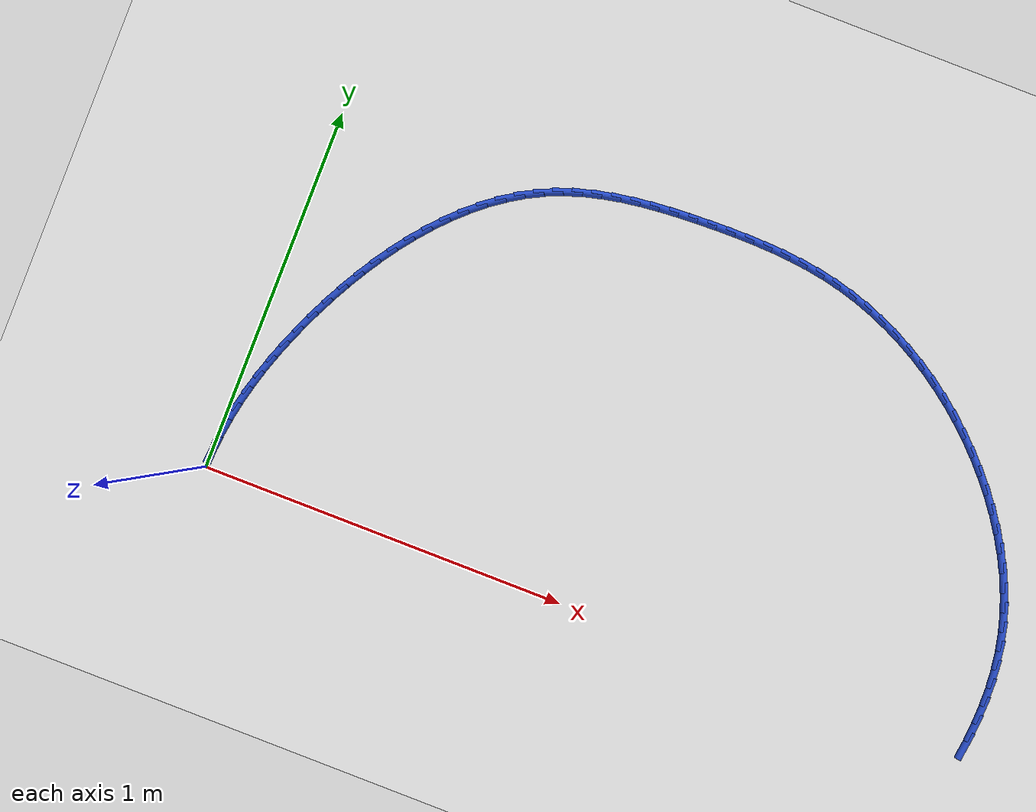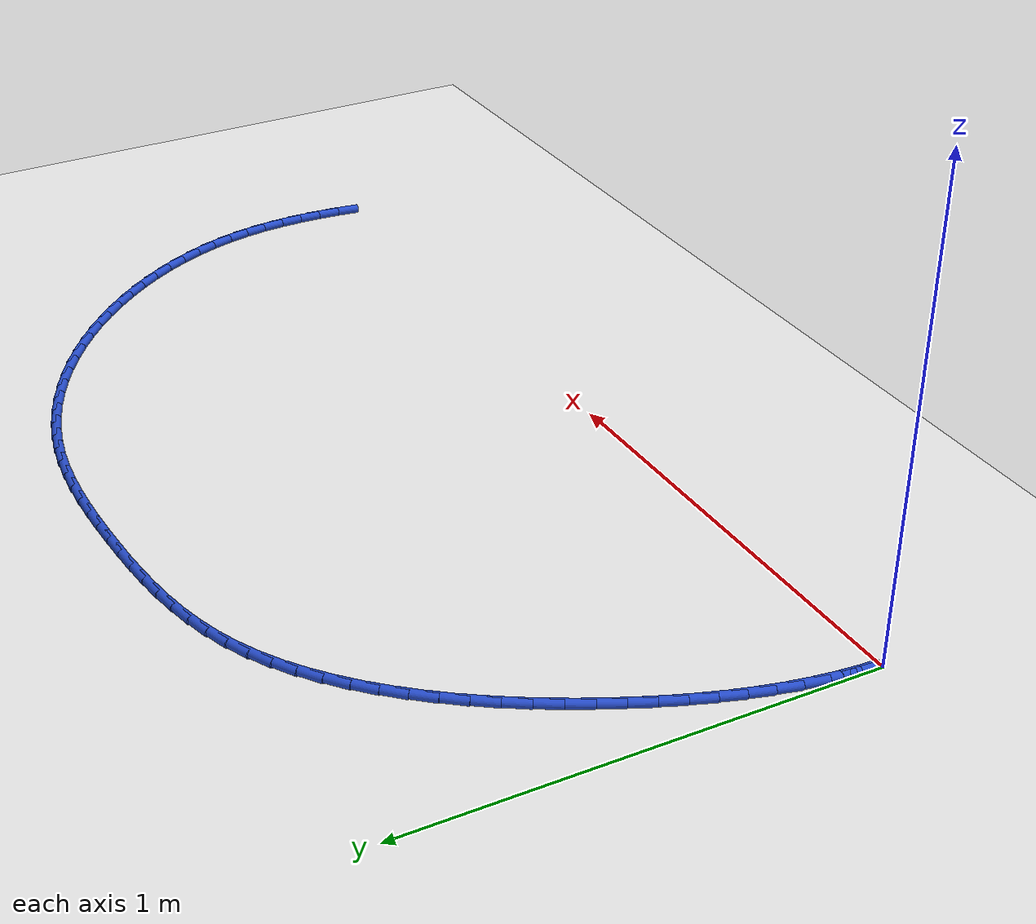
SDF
<sdf version="1.6">
 <world name="default">
  <model name="ground_plane">
   <static>1</static>
   <link name="link">
    <collision name="collision">
     <geometry><plane><normal>0 0 1</normal><size>100 100</size></plane></geometry>
     <surface><friction><ode><mu>100</mu><mu2>50</mu2></ode></friction></surface>
    </collision>
    <visual name="visual">
     <cast_shadows>0</cast_shadows>
     <geometry><plane><normal>0 0 1</normal><size>100 100</size></plane></geometry>
     <material>
      <script><uri>file://media/materials/scripts/gazebo.material</uri><name>Gazebo/WhiteGlow</name></script>
     </material>
    </visual>
   </link>
  </model>
  <model name="line">
   <link name="link_1">
    <pose>0.002122987057081736 0.05161057832736877 0.01 0 1.57 1.4746298192108533</pose>
    <collision name="collision">
     <geometry><cylinder><radius>0.01</radius><length>0.08</length></cylinder></geometry>
    </collision>
    <visual name="visual">
     <material>
      <script><name>Gazebo/Blue</name><uri>file://media/materials/scripts/gazebo.material</uri></script>
     </material>
     <geometry><cylinder><radius>0.01</radius><length>0.08</length></cylinder></geometry>
    </visual>
   </link>
   <link name="link_2">
    <pose>0.007065242117981601 0.10284473939891577 0.01 0 1.57 1.4220485175223843</pose>
    <collision name="collision">
     <geometry><cylinder><radius>0.01</radius><length>0.08</length></cylinder></geometry>
    </collision>
    <visual name="visual">
     <material>
      <script><name>Gazebo/Blue</name><uri>file://media/materials/scripts/gazebo.material</uri></script>
     </material>
     <geometry><cylinder><radius>0.01</radius><length>0.08</length></cylinder></geometry>
    </visual>
   </link>
   <link name="link_3">
    <pose>0.014689182851280323 0.15372030372954376 0.01 0 1.57 1.3722387298763576</pose>
    <collision name="collision">
     <geometry><cylinder><radius>0.01</radius><length>0.08</length></cylinder></geometry>
    </collision>
    <visual name="visual">
     <material>
      <script><name>Gazebo/Blue</name><uri>file://media/materials/scripts/gazebo.material</uri></script>
     </material>
     <geometry><cylinder><radius>0.01</radius><length>0.08</length></cylinder></geometry>
    </visual>
   </link>
   <link name="link_4">
    <pose>0.02485722692555863 0.20425509183415538 0.01 0 1.57 1.3254127008254404</pose>
    <collision name="collision">
     <geometry><cylinder><radius>0.01</radius><length>0.08</length></cylinder></geometry>
    </collision>
    <visual name="visual">
     <material>
      <script><name>Gazebo/Blue</name><uri>file://media/materials/scripts/gazebo.material</uri></script>
     </material>
     <geometry><cylinder><radius>0.01</radius><length>0.08</length></cylinder></geometry>
    </visual>
   </link>
   <link name="link_5">
    <pose>0.037431792009397225 0.25446692422765316 0.01 0 1.57 1.2817035086374633</pose>
    <collision name="collision">
     <geometry><cylinder><radius>0.01</radius><length>0.08</length></cylinder></geometry>
    </collision>
    <visual name="visual">
     <material>
      <script><name>Gazebo/Blue</name><uri>file://media/materials/scripts/gazebo.material</uri></script>
     </material>
     <geometry><cylinder><radius>0.01</radius><length>0.08</length></cylinder></geometry>
    </visual>
   </link>
   <link name="link_6">
    <pose>0.05227529577137683 0.3043736214249398 0.01 0 1.57 1.2411753798923555</pose>
    <collision name="collision">
     <geometry><cylinder><radius>0.01</radius><length>0.08</length></cylinder></geometry>
    </collision>
    <visual name="visual">
     <material>
      <script><name>Gazebo/Blue</name><uri>file://media/materials/scripts/gazebo.material</uri></script>
     </material>
     <geometry><cylinder><radius>0.01</radius><length>0.08</length></cylinder></geometry>
    </visual>
   </link>
   <link name="link_7">
    <pose>0.0692501558800782 0.3539930039409178 0.01 0 1.57 1.203835963782136</pose>
    <collision name="collision">
     <geometry><cylinder><radius>0.01</radius><length>0.08</length></cylinder></geometry>
    </collision>
    <visual name="visual">
     <material>
      <script><name>Gazebo/Blue</name><uri>file://media/materials/scripts/gazebo.material</uri></script>
     </material>
     <geometry><cylinder><radius>0.01</radius><length>0.08</length></cylinder></geometry>
    </visual>
   </link>
   <link name="link_8">
    <pose>0.08821879000408203 0.40334289229049 0.01 0 1.57 1.169648998151661</pose>
    <collision name="collision">
     <geometry><cylinder><radius>0.01</radius><length>0.08</length></cylinder></geometry>
    </collision>
    <visual name="visual">
     <material>
      <script><name>Gazebo/Blue</name><uri>file://media/materials/scripts/gazebo.material</uri></script>
     </material>
     <geometry><cylinder><radius>0.01</radius><length>0.08</length></cylinder></geometry>
    </visual>
   </link>
   <link name="link_9">
    <pose>0.10904361581196909 0.45244110698855877 0.01 0 1.57 1.138219138631614</pose>
    <collision name="collision">
     <geometry><cylinder><radius>0.01</radius><length>0.08</length></cylinder></geometry>
    </collision>
    <visual name="visual">
     <material>
      <script><name>Gazebo/Blue</name><uri>file://media/materials/scripts/gazebo.material</uri></script>
     </material>
     <geometry><cylinder><radius>0.01</radius><length>0.08</length></cylinder></geometry>
    </visual>
   </link>
   <link name="link_10">
    <pose>0.13159733834185822 0.5012857559714778 0.01 0 1.57 1.106544334453645</pose>
    <collision name="collision">
     <geometry><cylinder><radius>0.01</radius><length>0.08</length></cylinder></geometry>
    </collision>
    <visual name="visual">
     <material>
      <script><name>Gazebo/Blue</name><uri>file://media/materials/scripts/gazebo.material</uri></script>
     </material>
     <geometry><cylinder><radius>0.01</radius><length>0.08</length></cylinder></geometry>
    </visual>
   </link>
   <link name="link_11">
    <pose>0.15584247460496659 0.549702850162097 0.01 0 1.57 1.072860866396723</pose>
    <collision name="collision">
     <geometry><cylinder><radius>0.01</radius><length>0.08</length></cylinder></geometry>
    </collision>
    <visual name="visual">
     <material>
      <script><name>Gazebo/Blue</name><uri>file://media/materials/scripts/gazebo.material</uri></script>
     </material>
     <geometry><cylinder><radius>0.01</radius><length>0.08</length></cylinder></geometry>
    </visual>
   </link>
   <link name="link_12">
    <pose>0.18178790152196384 0.597429565980606 0.01 0 1.57 1.036826319427935</pose>
    <collision name="collision">
     <geometry><cylinder><radius>0.01</radius><length>0.08</length></cylinder></geometry>
    </collision>
    <visual name="visual">
     <material>
      <script><name>Gazebo/Blue</name><uri>file://media/materials/scripts/gazebo.material</uri></script>
     </material>
     <geometry><cylinder><radius>0.01</radius><length>0.08</length></cylinder></geometry>
    </visual>
   </link>
   <link name="link_13">
    <pose>0.20944288263749525 0.6442023390012989 0.01 0 1.57 0.9980889997799091</pose>
    <collision name="collision">
     <geometry><cylinder><radius>0.01</radius><length>0.08</length></cylinder></geometry>
    </collision>
    <visual name="visual">
     <material>
      <script><name>Gazebo/Blue</name><uri>file://media/materials/scripts/gazebo.material</uri></script>
     </material>
     <geometry><cylinder><radius>0.01</radius><length>0.08</length></cylinder></geometry>
    </visual>
   </link>
   <link name="link_14">
    <pose>0.2388166814962065 0.6897576047984708 0.01 0 1.57 0.9562744613404274</pose>
    <collision name="collision">
     <geometry><cylinder><radius>0.01</radius><length>0.08</length></cylinder></geometry>
    </collision>
    <visual name="visual">
     <material>
      <script><name>Gazebo/Blue</name><uri>file://media/materials/scripts/gazebo.material</uri></script>
     </material>
     <geometry><cylinder><radius>0.01</radius><length>0.08</length></cylinder></geometry>
    </visual>
   </link>
   <link name="link_15">
    <pose>0.26991856164274314 0.7338317989464165 0.01 0 1.57 0.9109873282340262</pose>
    <collision name="collision">
     <geometry><cylinder><radius>0.01</radius><length>0.08</length></cylinder></geometry>
    </collision>
    <visual name="visual">
     <material>
      <script><name>Gazebo/Blue</name><uri>file://media/materials/scripts/gazebo.material</uri></script>
     </material>
     <geometry><cylinder><radius>0.01</radius><length>0.08</length></cylinder></geometry>
    </visual>
   </link>
   <link name="link_16">
    <pose>0.30275778662175046 0.7761613570194296 0.01 0 1.57 0.861817460613663</pose>
    <collision name="collision">
     <geometry><cylinder><radius>0.01</radius><length>0.08</length></cylinder></geometry>
    </collision>
    <visual name="visual">
     <material>
      <script><name>Gazebo/Blue</name><uri>file://media/materials/scripts/gazebo.material</uri></script>
     </material>
     <geometry><cylinder><radius>0.01</radius><length>0.08</length></cylinder></geometry>
    </visual>
   </link>
   <link name="link_17">
    <pose>0.3373436199778742 0.8164827145918054 0.01 0 1.57 0.8083522917412677</pose>
    <collision name="collision">
     <geometry><cylinder><radius>0.01</radius><length>0.08</length></cylinder></geometry>
    </collision>
    <visual name="visual">
     <material>
      <script><name>Gazebo/Blue</name><uri>file://media/materials/scripts/gazebo.material</uri></script>
     </material>
     <geometry><cylinder><radius>0.01</radius><length>0.08</length></cylinder></geometry>
    </visual>
   </link>
   <link name="link_18">
    <pose>0.3736853252557597 0.8545323072378384 0.01 0 1.57 0.750197569891913</pose>
    <collision name="collision">
     <geometry><cylinder><radius>0.01</radius><length>0.08</length></cylinder></geometry>
    </collision>
    <visual name="visual">
     <material>
      <script><name>Gazebo/Blue</name><uri>file://media/materials/scripts/gazebo.material</uri></script>
     </material>
     <geometry><cylinder><radius>0.01</radius><length>0.08</length></cylinder></geometry>
    </visual>
   </link>
   <link name="link_19">
    <pose>0.41179216600005264 0.890046570531823 0.01 0 1.57 0.6870088254310174</pose>
    <collision name="collision">
     <geometry><cylinder><radius>0.01</radius><length>0.08</length></cylinder></geometry>
    </collision>
    <visual name="visual">
     <material>
      <script><name>Gazebo/Blue</name><uri>file://media/materials/scripts/gazebo.material</uri></script>
     </material>
     <geometry><cylinder><radius>0.01</radius><length>0.08</length></cylinder></geometry>
    </visual>
   </link>
   <link name="link_20">
    <pose>0.45167340575539827 0.9227619400480537 0.01 0 1.57 0.6185352343927327</pose>
    <collision name="collision">
     <geometry><cylinder><radius>0.01</radius><length>0.08</length></cylinder></geometry>
    </collision>
    <visual name="visual">
     <material>
      <script><name>Gazebo/Blue</name><uri>file://media/materials/scripts/gazebo.material</uri></script>
     </material>
     <geometry><cylinder><radius>0.01</radius><length>0.08</length></cylinder></geometry>
    </visual>
   </link>
   <link name="link_21">
    <pose>0.4933383080664422 0.9524148513608252 0.01 0 1.57 0.5446755889288483</pose>
    <collision name="collision">
     <geometry><cylinder><radius>0.01</radius><length>0.08</length></cylinder></geometry>
    </collision>
    <visual name="visual">
     <material>
      <script><name>Gazebo/Blue</name><uri>file://media/materials/scripts/gazebo.material</uri></script>
     </material>
     <geometry><cylinder><radius>0.01</radius><length>0.08</length></cylinder></geometry>
    </visual>
   </link>
   <link name="link_22">
    <pose>0.5367961364778302 0.978741740044432 0.01 0 1.57 0.46554227603611614</pose>
    <collision name="collision">
     <geometry><cylinder><radius>0.01</radius><length>0.08</length></cylinder></geometry>
    </collision>
    <visual name="visual">
     <material>
      <script><name>Gazebo/Blue</name><uri>file://media/materials/scripts/gazebo.material</uri></script>
     </material>
     <geometry><cylinder><radius>0.01</radius><length>0.08</length></cylinder></geometry>
    </visual>
   </link>
   <link name="link_23">
    <pose>0.5820561545342072 1.0014790416731685 0.01 0 1.57 0.3833126982745174</pose>
    <collision name="collision">
     <geometry><cylinder><radius>0.01</radius><length>0.08</length></cylinder></geometry>
    </collision>
    <visual name="visual">
     <material>
      <script><name>Gazebo/Blue</name><uri>file://media/materials/scripts/gazebo.material</uri></script>
     </material>
     <geometry><cylinder><radius>0.01</radius><length>0.08</length></cylinder></geometry>
    </visual>
   </link>
   <link name="link_24">
    <pose>0.6290940569422839 1.0204474991332095 0.01 0 1.57 0.30762005276217924</pose>
    <collision name="collision">
     <geometry><cylinder><radius>0.01</radius><length>0.08</length></cylinder></geometry>
    </collision>
    <visual name="visual">
     <material>
      <script><name>Gazebo/Blue</name><uri>file://media/materials/scripts/gazebo.material</uri></script>
     </material>
     <geometry><cylinder><radius>0.01</radius><length>0.08</length></cylinder></geometry>
    </visual>
   </link>
   <link name="link_25">
    <pose>0.6777155392564213 1.0358948040059397 0.01 0 1.57 0.24157349544436732</pose>
    <collision name="collision">
     <geometry><cylinder><radius>0.01</radius><length>0.08</length></cylinder></geometry>
    </collision>
    <visual name="visual">
     <material>
      <script><name>Gazebo/Blue</name><uri>file://media/materials/scripts/gazebo.material</uri></script>
     </material>
     <geometry><cylinder><radius>0.01</radius><length>0.08</length></cylinder></geometry>
    </visual>
   </link>
   <link name="link_26">
    <pose>0.7276726103691641 1.0482034806051221 0.01 0 1.57 0.1850025951954278</pose>
    <collision name="collision">
     <geometry><cylinder><radius>0.01</radius><length>0.08</length></cylinder></geometry>
    </collision>
    <visual name="visual">
     <material>
      <script><name>Gazebo/Blue</name><uri>file://media/materials/scripts/gazebo.material</uri></script>
     </material>
     <geometry><cylinder><radius>0.01</radius><length>0.08</length></cylinder></geometry>
    </visual>
   </link>
   <link name="link_27">
    <pose>0.7787172585446928 1.0577561050521502 0.01 0 1.57 0.13749559110920143</pose>
    <collision name="collision">
     <geometry><cylinder><radius>0.01</radius><length>0.08</length></cylinder></geometry>
    </collision>
    <visual name="visual">
     <material>
      <script><name>Gazebo/Blue</name><uri>file://media/materials/scripts/gazebo.material</uri></script>
     </material>
     <geometry><cylinder><radius>0.01</radius><length>0.08</length></cylinder></geometry>
    </visual>
   </link>
   <link name="link_28">
    <pose>0.830601472047187 1.0649352534684173 0.01 0 1.57 0.09854913867847018</pose>
    <collision name="collision">
     <geometry><cylinder><radius>0.01</radius><length>0.08</length></cylinder></geometry>
    </collision>
    <visual name="visual">
     <material>
      <script><name>Gazebo/Blue</name><uri>file://media/materials/scripts/gazebo.material</uri></script>
     </material>
     <geometry><cylinder><radius>0.01</radius><length>0.08</length></cylinder></geometry>
    </visual>
   </link>
   <link name="link_29">
    <pose>0.8830772391408273 1.0701235019753161 0.01 0 1.57 0.06767332160843843</pose>
    <collision name="collision">
     <geometry><cylinder><radius>0.01</radius><length>0.08</length></cylinder></geometry>
    </collision>
    <visual name="visual">
     <material>
      <script><name>Gazebo/Blue</name><uri>file://media/materials/scripts/gazebo.material</uri></script>
     </material>
     <geometry><cylinder><radius>0.01</radius><length>0.08</length></cylinder></geometry>
    </visual>
   </link>
   <link name="link_30">
    <pose>0.9358965480897938 1.0737034266942411 0.01 0 1.57 0.0444606028585605</pose>
    <collision name="collision">
     <geometry><cylinder><radius>0.01</radius><length>0.08</length></cylinder></geometry>
    </collision>
    <visual name="visual">
     <material>
      <script><name>Gazebo/Blue</name><uri>file://media/materials/scripts/gazebo.material</uri></script>
     </material>
     <geometry><cylinder><radius>0.01</radius><length>0.08</length></cylinder></geometry>
    </visual>
   </link>
   <link name="link_31">
    <pose>0.9888113871582666 1.0760576037465843 0.01 0 1.57 0.027847968895785464</pose>
    <collision name="collision">
     <geometry><cylinder><radius>0.01</radius><length>0.08</length></cylinder></geometry>
    </collision>
    <visual name="visual">
     <material>
      <script><name>Gazebo/Blue</name><uri>file://media/materials/scripts/gazebo.material</uri></script>
     </material>
     <geometry><cylinder><radius>0.01</radius><length>0.08</length></cylinder></geometry>
    </visual>
   </link>
   <link name="link_32">
    <pose>1.0415857307388718 1.0775276420542554 0.01 0 1.57 0.009845941630071325</pose>
    <collision name="collision">
     <geometry><cylinder><radius>0.01</radius><length>0.08</length></cylinder></geometry>
    </collision>
    <visual name="visual">
     <material>
      <script><name>Gazebo/Blue</name><uri>file://media/materials/scripts/gazebo.material</uri></script>
     </material>
     <geometry><cylinder><radius>0.01</radius><length>0.08</length></cylinder></geometry>
    </visual>
   </link>
   <link name="link_33">
    <pose>1.0941036285661363 1.078044746920729 0.01 0 1.57 -0.014193462097972355</pose>
    <collision name="collision">
     <geometry><cylinder><radius>0.01</radius><length>0.08</length></cylinder></geometry>
    </collision>
    <visual name="visual">
     <material>
      <script><name>Gazebo/Blue</name><uri>file://media/materials/scripts/gazebo.material</uri></script>
     </material>
     <geometry><cylinder><radius>0.01</radius><length>0.08</length></cylinder></geometry>
    </visual>
   </link>
   <link name="link_34">
    <pose>1.1463183351638118 1.077303589691223 0.01 0 1.57 -0.044462508395478224</pose>
    <collision name="collision">
     <geometry><cylinder><radius>0.01</radius><length>0.08</length></cylinder></geometry>
    </collision>
    <visual name="visual">
     <material>
      <script><name>Gazebo/Blue</name><uri>file://media/materials/scripts/gazebo.material</uri></script>
     </material>
     <geometry><cylinder><radius>0.01</radius><length>0.08</length></cylinder></geometry>
    </visual>
   </link>
   <link name="link_35">
    <pose>1.1981839382235815 1.0749959940394065 0.01 0 1.57 -0.08107625895810534</pose>
    <collision name="collision">
     <geometry><cylinder><radius>0.01</radius><length>0.08</length></cylinder></geometry>
    </collision>
    <visual name="visual">
     <material>
      <script><name>Gazebo/Blue</name><uri>file://media/materials/scripts/gazebo.material</uri></script>
     </material>
     <geometry><cylinder><radius>0.01</radius><length>0.08</length></cylinder></geometry>
    </visual>
   </link>
   <link name="link_36">
    <pose>1.2496545254371303 1.0708137836389482 0.01 0 1.57 -0.12409053084290556</pose>
    <collision name="collision">
     <geometry><cylinder><radius>0.01</radius><length>0.08</length></cylinder></geometry>
    </collision>
    <visual name="visual">
     <material>
      <script><name>Gazebo/Blue</name><uri>file://media/materials/scripts/gazebo.material</uri></script>
     </material>
     <geometry><cylinder><radius>0.01</radius><length>0.08</length></cylinder></geometry>
    </visual>
   </link>
   <link name="link_37">
    <pose>1.300684184496141 1.0644487821635158 0.01 0 1.57 -0.17345636085955263</pose>
    <collision name="collision">
     <geometry><cylinder><radius>0.01</radius><length>0.08</length></cylinder></geometry>
    </collision>
    <visual name="visual">
     <material>
      <script><name>Gazebo/Blue</name><uri>file://media/materials/scripts/gazebo.material</uri></script>
     </material>
     <geometry><cylinder><radius>0.01</radius><length>0.08</length></cylinder></geometry>
    </visual>
   </link>
   <link name="link_38">
    <pose>1.3512270030923001 1.0555928132867791 0.01 0 1.57 -0.22886037122118144</pose>
    <collision name="collision">
     <geometry><cylinder><radius>0.01</radius><length>0.08</length></cylinder></geometry>
    </collision>
    <visual name="visual">
     <material>
      <script><name>Gazebo/Blue</name><uri>file://media/materials/scripts/gazebo.material</uri></script>
     </material>
     <geometry><cylinder><radius>0.01</radius><length>0.08</length></cylinder></geometry>
    </visual>
   </link>
   <link name="link_39">
    <pose>1.4012361903525279 1.0439435944051894 0.01 0 1.57 -0.28664828968040473</pose>
    <collision name="collision">
     <geometry><cylinder><radius>0.01</radius><length>0.08</length></cylinder></geometry>
    </collision>
    <visual name="visual">
     <material>
      <script><name>Gazebo/Blue</name><uri>file://media/materials/scripts/gazebo.material</uri></script>
     </material>
     <geometry><cylinder><radius>0.01</radius><length>0.08</length></cylinder></geometry>
    </visual>
   </link>
   <link name="link_40">
    <pose>1.450637697599778 1.0293816978931396 0.01 0 1.57 -0.3428724586278647</pose>
    <collision name="collision">
     <geometry><cylinder><radius>0.01</radius><length>0.08</length></cylinder></geometry>
    </collision>
    <visual name="visual">
     <material>
      <script><name>Gazebo/Blue</name><uri>file://media/materials/scripts/gazebo.material</uri></script>
     </material>
     <geometry><cylinder><radius>0.01</radius><length>0.08</length></cylinder></geometry>
    </visual>
   </link>
   <link name="link_41">
    <pose>1.499325608771805 1.0120014738022336 0.01 0 1.57 -0.3974167779181386</pose>
    <collision name="collision">
     <geometry><cylinder><radius>0.01</radius><length>0.08</length></cylinder></geometry>
    </collision>
    <visual name="visual">
     <material>
      <script><name>Gazebo/Blue</name><uri>file://media/materials/scripts/gazebo.material</uri></script>
     </material>
     <geometry><cylinder><radius>0.01</radius><length>0.08</length></cylinder></geometry>
    </visual>
   </link>
   <link name="link_42">
    <pose>1.5471922002645513 0.9919093978130651 0.01 0 1.57 -0.4504150446149429</pose>
    <collision name="collision">
     <geometry><cylinder><radius>0.01</radius><length>0.08</length></cylinder></geometry>
    </collision>
    <visual name="visual">
     <material>
      <script><name>Gazebo/Blue</name><uri>file://media/materials/scripts/gazebo.material</uri></script>
     </material>
     <geometry><cylinder><radius>0.01</radius><length>0.08</length></cylinder></geometry>
    </visual>
   </link>
   <link name="link_43">
    <pose>1.5941297484739585 0.9692119456062271 0.01 0 1.57 -0.5020219596239812</pose>
    <collision name="collision">
     <geometry><cylinder><radius>0.01</radius><length>0.08</length></cylinder></geometry>
    </collision>
    <visual name="visual">
     <material>
      <script><name>Gazebo/Blue</name><uri>file://media/materials/scripts/gazebo.material</uri></script>
     </material>
     <geometry><cylinder><radius>0.01</radius><length>0.08</length></cylinder></geometry>
    </visual>
   </link>
   <link name="link_44">
    <pose>1.640030529795969 0.9440155928623137 0.01 0 1.57 -0.5524073195346795</pose>
    <collision name="collision">
     <geometry><cylinder><radius>0.01</radius><length>0.08</length></cylinder></geometry>
    </collision>
    <visual name="visual">
     <material>
      <script><name>Gazebo/Blue</name><uri>file://media/materials/scripts/gazebo.material</uri></script>
     </material>
     <geometry><cylinder><radius>0.01</radius><length>0.08</length></cylinder></geometry>
    </visual>
   </link>
   <link name="link_45">
    <pose>1.6847868206265249 0.9164268152619182 0.01 0 1.57 -0.601751362470489</pose>
    <collision name="collision">
     <geometry><cylinder><radius>0.01</radius><length>0.08</length></cylinder></geometry>
    </collision>
    <visual name="visual">
     <material>
      <script><name>Gazebo/Blue</name><uri>file://media/materials/scripts/gazebo.material</uri></script>
     </material>
     <geometry><cylinder><radius>0.01</radius><length>0.08</length></cylinder></geometry>
    </visual>
   </link>
   <link name="link_46">
    <pose>1.7282908973615698 0.8865520884856336 0.01 0 1.57 -0.6502411656091158</pose>
    <collision name="collision">
     <geometry><cylinder><radius>0.01</radius><length>0.08</length></cylinder></geometry>
    </collision>
    <visual name="visual">
     <material>
      <script><name>Gazebo/Blue</name><uri>file://media/materials/scripts/gazebo.material</uri></script>
     </material>
     <geometry><cylinder><radius>0.01</radius><length>0.08</length></cylinder></geometry>
    </visual>
   </link>
   <link name="link_47">
    <pose>1.770435036397045 0.8544978882140537 0.01 0 1.57 -0.6980679407269345</pose>
    <collision name="collision">
     <geometry><cylinder><radius>0.01</radius><length>0.08</length></cylinder></geometry>
    </collision>
    <visual name="visual">
     <material>
      <script><name>Gazebo/Blue</name><uri>file://media/materials/scripts/gazebo.material</uri></script>
     </material>
     <geometry><cylinder><radius>0.01</radius><length>0.08</length></cylinder></geometry>
    </visual>
   </link>
   <link name="link_48">
    <pose>1.8111115141288918 0.8203706901277718 0.01 0 1.57 -0.7454250517559063</pose>
    <collision name="collision">
     <geometry><cylinder><radius>0.01</radius><length>0.08</length></cylinder></geometry>
    </collision>
    <visual name="visual">
     <material>
      <script><name>Gazebo/Blue</name><uri>file://media/materials/scripts/gazebo.material</uri></script>
     </material>
     <geometry><cylinder><radius>0.01</radius><length>0.08</length></cylinder></geometry>
    </visual>
   </link>
   <link name="link_49">
    <pose>1.8502126069530542 0.7842769699073817 0.01 0 1.57 -0.7925068940371026</pose>
    <collision name="collision">
     <geometry><cylinder><radius>0.01</radius><length>0.08</length></cylinder></geometry>
    </collision>
    <visual name="visual">
     <material>
      <script><name>Gazebo/Blue</name><uri>file://media/materials/scripts/gazebo.material</uri></script>
     </material>
     <geometry><cylinder><radius>0.01</radius><length>0.08</length></cylinder></geometry>
    </visual>
   </link>
   <link name="link_50">
    <pose>1.8876305604178534 0.7463232102103489 0.01 0 1.57 -0.8397715264558067</pose>
    <collision name="collision">
     <geometry><cylinder><radius>0.01</radius><length>0.08</length></cylinder></geometry>
    </collision>
    <visual name="visual">
     <material>
      <script><name>Gazebo/Blue</name><uri>file://media/materials/scripts/gazebo.material</uri></script>
     </material>
     <geometry><cylinder><radius>0.01</radius><length>0.08</length></cylinder></geometry>
    </visual>
   </link>
   <link name="link_51">
    <pose>1.923233864565424 0.7066212665278 0.01 0 1.57 -0.8882495703039754</pose>
    <collision name="collision">
     <geometry><cylinder><radius>0.01</radius><length>0.08</length></cylinder></geometry>
    </collision>
    <visual name="visual">
     <material>
      <script><name>Gazebo/Blue</name><uri>file://media/materials/scripts/gazebo.material</uri></script>
     </material>
     <geometry><cylinder><radius>0.01</radius><length>0.08</length></cylinder></geometry>
    </visual>
   </link>
   <link name="link_52">
    <pose>1.9568248480881087 0.6652979582049028 0.01 0 1.57 -0.9384774467832709</pose>
    <collision name="collision">
     <geometry><cylinder><radius>0.01</radius><length>0.08</length></cylinder></geometry>
    </collision>
    <visual name="visual">
     <material>
      <script><name>Gazebo/Blue</name><uri>file://media/materials/scripts/gazebo.material</uri></script>
     </material>
     <geometry><cylinder><radius>0.01</radius><length>0.08</length></cylinder></geometry>
    </visual>
   </link>
   <link name="link_53">
    <pose>1.9881944126520652 0.6224826890617845 0.01 0 1.57 -0.9908734684484066</pose>
    <collision name="collision">
     <geometry><cylinder><radius>0.01</radius><length>0.08</length></cylinder></geometry>
    </collision>
    <visual name="visual">
     <material>
      <script><name>Gazebo/Blue</name><uri>file://media/materials/scripts/gazebo.material</uri></script>
     </material>
     <geometry><cylinder><radius>0.01</radius><length>0.08</length></cylinder></geometry>
    </visual>
   </link>
   <link name="link_54">
    <pose>2.017133459923454 0.5783048629185727 0.01 0 1.57 -1.0458543626665768</pose>
    <collision name="collision">
     <geometry><cylinder><radius>0.01</radius><length>0.08</length></cylinder></geometry>
    </collision>
    <visual name="visual">
     <material>
      <script><name>Gazebo/Blue</name><uri>file://media/materials/scripts/gazebo.material</uri></script>
     </material>
     <geometry><cylinder><radius>0.01</radius><length>0.08</length></cylinder></geometry>
    </visual>
   </link>
   <link name="link_55">
    <pose>2.0434328915684334 0.5328938835953958 0.01 0 1.57 -1.1038287943347598</pose>
    <collision name="collision">
     <geometry><cylinder><radius>0.01</radius><length>0.08</length></cylinder></geometry>
    </collision>
    <visual name="visual">
     <material>
      <script><name>Gazebo/Blue</name><uri>file://media/materials/scripts/gazebo.material</uri></script>
     </material>
     <geometry><cylinder><radius>0.01</radius><length>0.08</length></cylinder></geometry>
    </visual>
   </link>
   <link name="link_56">
    <pose>2.0668836092531633 0.48637915491238154 0.01 0 1.57 -1.1651852483113248</pose>
    <collision name="collision">
     <geometry><cylinder><radius>0.01</radius><length>0.08</length></cylinder></geometry>
    </collision>
    <visual name="visual">
     <material>
      <script><name>Gazebo/Blue</name><uri>file://media/materials/scripts/gazebo.material</uri></script>
     </material>
     <geometry><cylinder><radius>0.01</radius><length>0.08</length></cylinder></geometry>
    </visual>
   </link>
   <link name="link_57">
    <pose>2.0872765146438015 0.4388900806896574 0.01 0 1.57 -1.230272889542565</pose>
    <collision name="collision">
     <geometry><cylinder><radius>0.01</radius><length>0.08</length></cylinder></geometry>
    </collision>
    <visual name="visual">
     <material>
      <script><name>Gazebo/Blue</name><uri>file://media/materials/scripts/gazebo.material</uri></script>
     </material>
     <geometry><cylinder><radius>0.01</radius><length>0.08</length></cylinder></geometry>
    </visual>
   </link>
   <link name="link_58">
    <pose>2.1044025094065084 0.390556064747351 0.01 0 1.57 -1.2993742842954852</pose>
    <collision name="collision">
     <geometry><cylinder><radius>0.01</radius><length>0.08</length></cylinder></geometry>
    </collision>
    <visual name="visual">
     <material>
      <script><name>Gazebo/Blue</name><uri>file://media/materials/scripts/gazebo.material</uri></script>
     </material>
     <geometry><cylinder><radius>0.01</radius><length>0.08</length></cylinder></geometry>
    </visual>
   </link>
   <link name="link_59">
    <pose>2.1180524952074427 0.3415065109055905 0.01 0 1.57 -1.3714420114396242</pose>
    <collision name="collision">
     <geometry><cylinder><radius>0.01</radius><length>0.08</length></cylinder></geometry>
    </collision>
    <visual name="visual">
     <material>
      <script><name>Gazebo/Blue</name><uri>file://media/materials/scripts/gazebo.material</uri></script>
     </material>
     <geometry><cylinder><radius>0.01</radius><length>0.08</length></cylinder></geometry>
    </visual>
   </link>
   <link name="link_60">
    <pose>2.128082685422651 0.2918614201410547 0.01 0 1.57 -1.4405101253890606</pose>
    <collision name="collision">
     <geometry><cylinder><radius>0.01</radius><length>0.08</length></cylinder></geometry>
    </collision>
    <visual name="visual">
     <material>
      <script><name>Gazebo/Blue</name><uri>file://media/materials/scripts/gazebo.material</uri></script>
     </material>
     <geometry><cylinder><radius>0.01</radius><length>0.08</length></cylinder></geometry>
    </visual>
   </link>
   <link name="link_61">
    <pose>2.1346556919571738 0.24169668162556904 0.01 0 1.57 -1.5043570587727697</pose>
    <collision name="collision">
     <geometry><cylinder><radius>0.01</radius><length>0.08</length></cylinder></geometry>
    </collision>
    <visual name="visual">
     <material>
      <script><name>Gazebo/Blue</name><uri>file://media/materials/scripts/gazebo.material</uri></script>
     </material>
     <geometry><cylinder><radius>0.01</radius><length>0.08</length></cylinder></geometry>
    </visual>
   </link>
   <link name="link_62">
    <pose>2.138023899566151 0.19107526004839798 0.01 0 1.57 -1.562645889410964</pose>
    <collision name="collision">
     <geometry><cylinder><radius>0.01</radius><length>0.08</length></cylinder></geometry>
    </collision>
    <visual name="visual">
     <material>
      <script><name>Gazebo/Blue</name><uri>file://media/materials/scripts/gazebo.material</uri></script>
     </material>
     <geometry><cylinder><radius>0.01</radius><length>0.08</length></cylinder></geometry>
    </visual>
   </link>
   <link name="link_63">
    <pose>2.138439704490717 0.14006011844518232 0.01 0 1.57 1.5263390961996852</pose>
    <collision name="collision">
     <geometry><cylinder><radius>0.01</radius><length>0.08</length></cylinder></geometry>
    </collision>
    <visual name="visual">
     <material>
      <script><name>Gazebo/Blue</name><uri>file://media/materials/scripts/gazebo.material</uri></script>
     </material>
     <geometry><cylinder><radius>0.01</radius><length>0.08</length></cylinder></geometry>
    </visual>
   </link>
   <link name="link_64">
    <pose>2.136155502972007 0.08871421985156314 0.01 0 1.57 1.4793744314103934</pose>
    <collision name="collision">
     <geometry><cylinder><radius>0.01</radius><length>0.08</length></cylinder></geometry>
    </collision>
    <visual name="visual">
     <material>
      <script><name>Gazebo/Blue</name><uri>file://media/materials/scripts/gazebo.material</uri></script>
     </material>
     <geometry><cylinder><radius>0.01</radius><length>0.08</length></cylinder></geometry>
    </visual>
   </link>
   <link name="link_65">
    <pose>2.1314236912511575 0.03710052730318064 0.01 0 1.57 1.4379056117634947</pose>
    <collision name="collision">
     <geometry><cylinder><radius>0.01</radius><length>0.08</length></cylinder></geometry>
    </collision>
    <visual name="visual">
     <material>
      <script><name>Gazebo/Blue</name><uri>file://media/materials/scripts/gazebo.material</uri></script>
     </material>
     <geometry><cylinder><radius>0.01</radius><length>0.08</length></cylinder></geometry>
    </visual>
   </link>
   <link name="link_131">
    <pose>0.0021532484703241303 0.05156796224195186 0.01 0 1.57 1.529065021744715</pose>
    <collision name="collision">
     <geometry><cylinder><radius>0.01</radius><length>0.08</length></cylinder></geometry>
    </collision>
    <visual name="visual">
     <material>
      <script><name>Gazebo/Blue</name><uri>file://media/materials/scripts/gazebo.material</uri></script>
     </material>
     <geometry><cylinder><radius>0.01</radius><length>0.08</length></cylinder></geometry>
    </visual>
   </link>
  </model>
 </world>
</sdf>
